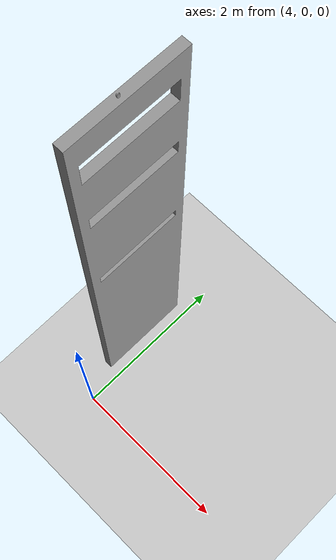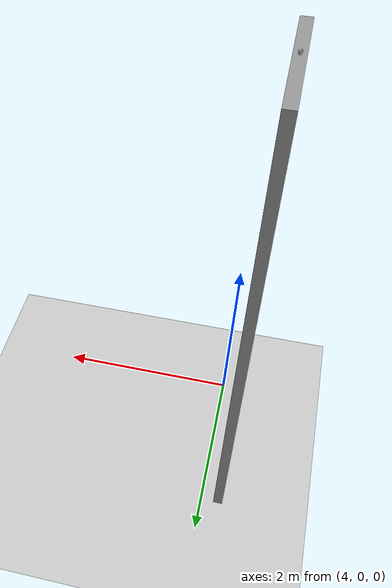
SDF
<?xml version="1.0" ?>
<sdf version="1.5">
  <world name="default">
    <!-- A global light source -->
    <include>
      <uri>model://sun</uri>
    </include>

    <!-- A ground plane -->
    <include>
      <uri>model://ground_plane</uri>
    </include>
    <!-- Parede -->
    <include>
        <uri>model://parede</uri>
        <pose>4 1 0 0 0 1.57</pose>
    </include>

    <!-- Física -->
    <physics name='default_physics' default='0' type='ode'>
      <gravity>0 0 -9.8066</gravity>
      <ode>
        <solver>
          <type>quick</type>
          <iters>10</iters>
          <sor>1.3</sor>
          <use_dynamic_moi_rescaling>0</use_dynamic_moi_rescaling>
        </solver>
        <constraints>
          <cfm>0</cfm>
          <erp>0.2</erp>
          <contact_max_correcting_vel>100</contact_max_correcting_vel>
          <contact_surface_layer>0.001</contact_surface_layer>
        </constraints>
      </ode>
      <max_step_size>0.004</max_step_size>
      <real_time_factor>1</real_time_factor>
      <real_time_update_rate>250</real_time_update_rate>
      <magnetic_field>6.0e-6 2.3e-5 -4.2e-5</magnetic_field>
    </physics>
  </world>
</sdf>

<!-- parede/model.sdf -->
<sdf version='1.5'>
  <model name='parede'>

    <static>true</static>
    <link name="link">
      <pose>0 0 0 0 0 0</pose>

      <inertial>
        <mass>1</mass>
        <inertia>
          <ixx>0.166666</ixx>
          <iyy>0.166666</iyy>
          <izz>0.166666</izz>
          <ixy>0</ixy>
          <ixz>0</ixz>
          <iyz>0</iyz>
        </inertia>
      </inertial>

      <visual name="visual">
        <geometry>
          <mesh>
            <scale>0.001 0.001 0.001</scale>
            <uri>model://parede/meshes/another_brick_in_the_wall.stl</uri>
          </mesh>
        </geometry>
        <material>
          <script>
            <name>Gazebo/Grey</name>
            <uri>file://media/materials/scripts/gazebo.material</uri>
          </script>
        </material>
        <cast_shadows>0</cast_shadows>
      </visual>

      <collision name="collision">
        <geometry>
          <mesh>
            <scale>0.001 0.001 0.001</scale>
            <uri>model://parede/meshes/another_brick_in_the_wall.stl</uri>
          </mesh>
        </geometry>
      </collision>

    </link>
  </model>
</sdf>
